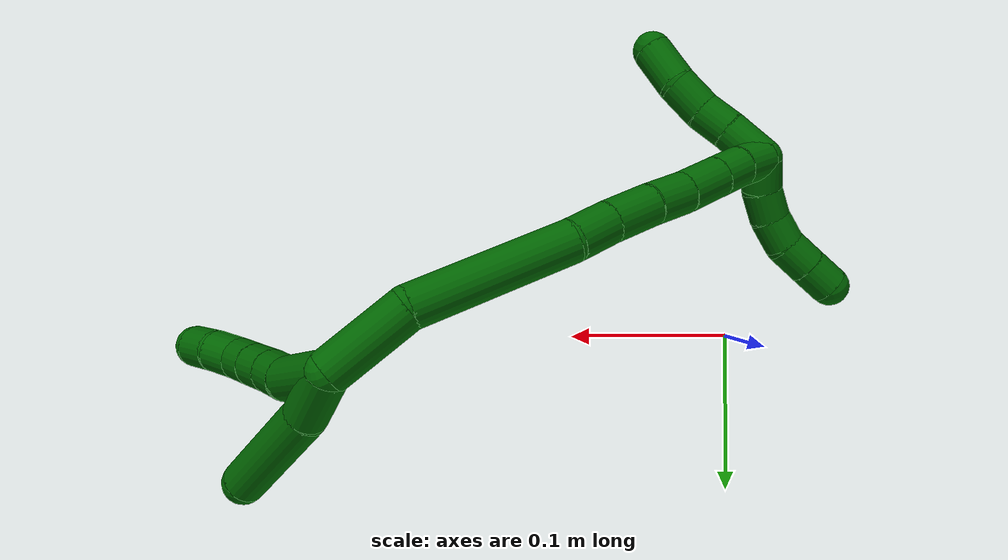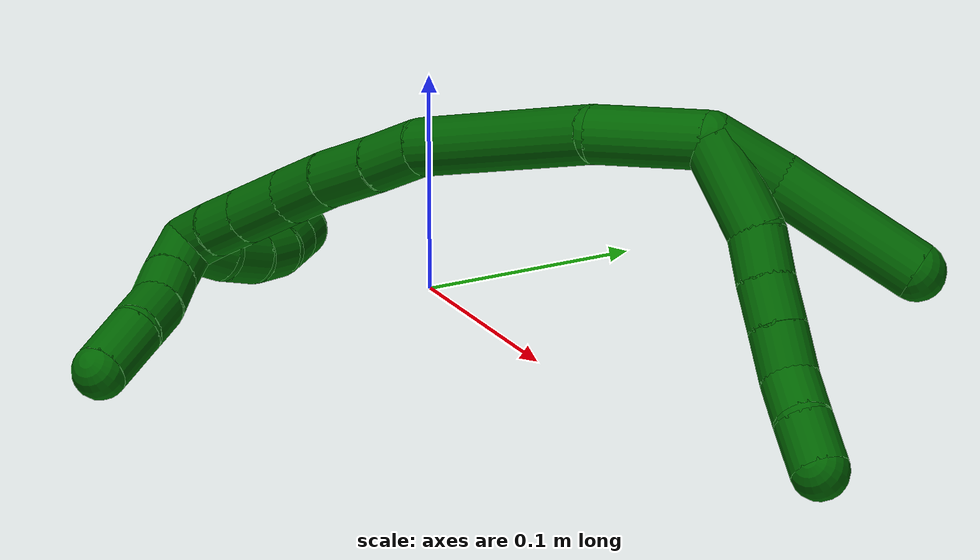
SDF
<sdf version="1.7">
 <world name="default">
  <model name="6">
   <static>0</static>
   <link name="6">
    <collision name="collision-cylinder-e_1_2_8">
     <pose>0.017244 -0.009899 -0.007906 2.24471 0.937164 1.62153</pose>
     <geometry><cylinder><radius>0.0125</radius><length>0.042795</length></cylinder></geometry>
     <surface>
      <friction><ode><mu>1.16</mu><mu2>1.16</mu2><slip1>0</slip1><slip2>0</slip2></ode></friction>
      <contact><ode><kp>1e+06</kp><kd>1</kd><max_vel>0</max_vel><min_depth>0.001</min_depth></ode></contact>
     </surface>
    </collision>
    <visual name="visual-cylinder-e_1_2_8">
     <pose>0.017244 -0.009899 -0.007906 2.24471 0.937164 1.62153</pose>
     <geometry><cylinder><radius>0.0125</radius><length>0.042795</length></cylinder></geometry>
     <material><ambient>0 0.392157 0.003922 1</ambient></material>
    </visual>
    <collision name="collision-cylinder-e_2_8_9">
     <pose>0.041737 -0.026891 -0.018401 1.92078 0.765109 1.04399</pose>
     <geometry><cylinder><radius>0.0125</radius><length>0.020933</length></cylinder></geometry>
     <surface>
      <friction><ode><mu>1.16</mu><mu2>1.16</mu2><slip1>0</slip1><slip2>0</slip2></ode></friction>
      <contact><ode><kp>1e+06</kp><kd>1</kd><max_vel>0</max_vel><min_depth>0.001</min_depth></ode></contact>
     </surface>
    </collision>
    <visual name="visual-cylinder-e_2_8_9">
     <pose>0.041737 -0.026891 -0.018401 1.92078 0.765109 1.04399</pose>
     <geometry><cylinder><radius>0.0125</radius><length>0.020933</length></cylinder></geometry>
     <material><ambient>0 0.392157 0.003922 1</ambient></material>
    </visual>
    <collision name="collision-cylinder-e_3_9_10">
     <pose>0.056793 -0.04068 -0.02321 1.89101 0.835806 1.1029</pose>
     <geometry><cylinder><radius>0.0125</radius><length>0.021046</length></cylinder></geometry>
     <surface>
      <friction><ode><mu>1.16</mu><mu2>1.16</mu2><slip1>0</slip1><slip2>0</slip2></ode></friction>
      <contact><ode><kp>1e+06</kp><kd>1</kd><max_vel>0</max_vel><min_depth>0.001</min_depth></ode></contact>
     </surface>
    </collision>
    <visual name="visual-cylinder-e_3_9_10">
     <pose>0.056793 -0.04068 -0.02321 1.89101 0.835806 1.1029</pose>
     <geometry><cylinder><radius>0.0125</radius><length>0.021046</length></cylinder></geometry>
     <material><ambient>0 0.392157 0.003922 1</ambient></material>
    </visual>
    <collision name="collision-cylinder-e_4_10_11">
     <pose>0.072527 -0.054356 -0.027822 1.9009 0.821453 1.09485</pose>
     <geometry><cylinder><radius>0.0125</radius><length>0.021657</length></cylinder></geometry>
     <surface>
      <friction><ode><mu>1.16</mu><mu2>1.16</mu2><slip1>0</slip1><slip2>0</slip2></ode></friction>
      <contact><ode><kp>1e+06</kp><kd>1</kd><max_vel>0</max_vel><min_depth>0.001</min_depth></ode></contact>
     </surface>
    </collision>
    <visual name="visual-cylinder-e_4_10_11">
     <pose>0.072527 -0.054356 -0.027822 1.9009 0.821453 1.09485</pose>
     <geometry><cylinder><radius>0.0125</radius><length>0.021657</length></cylinder></geometry>
     <material><ambient>0 0.392157 0.003922 1</ambient></material>
    </visual>
    <collision name="collision-cylinder-e_5_11_12">
     <pose>0.089185 -0.066874 -0.029451 1.43416 1.00103 0.890014</pose>
     <geometry><cylinder><radius>0.0125</radius><length>0.020736</length></cylinder></geometry>
     <surface>
      <friction><ode><mu>1.16</mu><mu2>1.16</mu2><slip1>0</slip1><slip2>0</slip2></ode></friction>
      <contact><ode><kp>1e+06</kp><kd>1</kd><max_vel>0</max_vel><min_depth>0.001</min_depth></ode></contact>
     </surface>
    </collision>
    <visual name="visual-cylinder-e_5_11_12">
     <pose>0.089185 -0.066874 -0.029451 1.43416 1.00103 0.890014</pose>
     <geometry><cylinder><radius>0.0125</radius><length>0.020736</length></cylinder></geometry>
     <material><ambient>0 0.392157 0.003922 1</ambient></material>
    </visual>
    <collision name="collision-cylinder-e_6_12_6">
     <pose>0.107198 -0.07886 -0.030308 1.81678 0.949535 1.16531</pose>
     <geometry><cylinder><radius>0.0125</radius><length>0.022833</length></cylinder></geometry>
     <surface>
      <friction><ode><mu>1.16</mu><mu2>1.16</mu2><slip1>0</slip1><slip2>0</slip2></ode></friction>
      <contact><ode><kp>1e+06</kp><kd>1</kd><max_vel>0</max_vel><min_depth>0.001</min_depth></ode></contact>
     </surface>
    </collision>
    <visual name="visual-cylinder-e_6_12_6">
     <pose>0.107198 -0.07886 -0.030308 1.81678 0.949535 1.16531</pose>
     <geometry><cylinder><radius>0.0125</radius><length>0.022833</length></cylinder></geometry>
     <material><ambient>0 0.392157 0.003922 1</ambient></material>
    </visual>
    <collision name="collision-cylinder-e_1_2_13">
     <pose>0.011889 0.00198 -0.010966 -2.96297 0.81773 -2.73397</pose>
     <geometry><cylinder><radius>0.0125</radius><length>0.03259</length></cylinder></geometry>
     <surface>
      <friction><ode><mu>1.16</mu><mu2>1.16</mu2><slip1>0</slip1><slip2>0</slip2></ode></friction>
      <contact><ode><kp>1e+06</kp><kd>1</kd><max_vel>0</max_vel><min_depth>0.001</min_depth></ode></contact>
     </surface>
    </collision>
    <visual name="visual-cylinder-e_1_2_13">
     <pose>0.011889 0.00198 -0.010966 -2.96297 0.81773 -2.73397</pose>
     <geometry><cylinder><radius>0.0125</radius><length>0.03259</length></cylinder></geometry>
     <material><ambient>0 0.392157 0.003922 1</ambient></material>
    </visual>
    <collision name="collision-cylinder-e_2_13_5">
     <pose>0.052503 0.005726 -0.039476 -3.04126 1.02027 -2.96261</pose>
     <geometry><cylinder><radius>0.0125</radius><length>0.06741</length></cylinder></geometry>
     <surface>
      <friction><ode><mu>1.16</mu><mu2>1.16</mu2><slip1>0</slip1><slip2>0</slip2></ode></friction>
      <contact><ode><kp>1e+06</kp><kd>1</kd><max_vel>0</max_vel><min_depth>0.001</min_depth></ode></contact>
     </surface>
    </collision>
    <visual name="visual-cylinder-e_2_13_5">
     <pose>0.052503 0.005726 -0.039476 -3.04126 1.02027 -2.96261</pose>
     <geometry><cylinder><radius>0.0125</radius><length>0.06741</length></cylinder></geometry>
     <material><ambient>0 0.392157 0.003922 1</ambient></material>
    </visual>
    <collision name="collision-cylinder-e_1_2_14">
     <pose>-0.022977 -0.012223 0.00214 1.39751 -1.07561 -0.929072</pose>
     <geometry><cylinder><radius>0.0125</radius><length>0.052227</length></cylinder></geometry>
     <surface>
      <friction><ode><mu>1.16</mu><mu2>1.16</mu2><slip1>0</slip1><slip2>0</slip2></ode></friction>
      <contact><ode><kp>1e+06</kp><kd>1</kd><max_vel>0</max_vel><min_depth>0.001</min_depth></ode></contact>
     </surface>
    </collision>
    <visual name="visual-cylinder-e_1_2_14">
     <pose>-0.022977 -0.012223 0.00214 1.39751 -1.07561 -0.929072</pose>
     <geometry><cylinder><radius>0.0125</radius><length>0.052227</length></cylinder></geometry>
     <material><ambient>0 0.392157 0.003922 1</ambient></material>
    </visual>
    <collision name="collision-cylinder-e_2_14_15">
     <pose>-0.088005 -0.044537 -0.008017 2.12002 -1.0602 -1.61555</pose>
     <geometry><cylinder><radius>0.0125</radius><length>0.0964</length></cylinder></geometry>
     <surface>
      <friction><ode><mu>1.16</mu><mu2>1.16</mu2><slip1>0</slip1><slip2>0</slip2></ode></friction>
      <contact><ode><kp>1e+06</kp><kd>1</kd><max_vel>0</max_vel><min_depth>0.001</min_depth></ode></contact>
     </surface>
    </collision>
    <visual name="visual-cylinder-e_2_14_15">
     <pose>-0.088005 -0.044537 -0.008017 2.12002 -1.0602 -1.61555</pose>
     <geometry><cylinder><radius>0.0125</radius><length>0.0964</length></cylinder></geometry>
     <material><ambient>0 0.392157 0.003922 1</ambient></material>
    </visual>
    <collision name="collision-cylinder-e_3_15_16">
     <pose>-0.139788 -0.072167 -0.024521 2.07986 -0.845014 -1.30707</pose>
     <geometry><cylinder><radius>0.0125</radius><length>0.026017</length></cylinder></geometry>
     <surface>
      <friction><ode><mu>1.16</mu><mu2>1.16</mu2><slip1>0</slip1><slip2>0</slip2></ode></friction>
      <contact><ode><kp>1e+06</kp><kd>1</kd><max_vel>0</max_vel><min_depth>0.001</min_depth></ode></contact>
     </surface>
    </collision>
    <visual name="visual-cylinder-e_3_15_16">
     <pose>-0.139788 -0.072167 -0.024521 2.07986 -0.845014 -1.30707</pose>
     <geometry><cylinder><radius>0.0125</radius><length>0.026017</length></cylinder></geometry>
     <material><ambient>0 0.392157 0.003922 1</ambient></material>
    </visual>
    <collision name="collision-cylinder-e_4_16_17">
     <pose>-0.161216 -0.087677 -0.03393 2.14894 -0.887874 -1.44132</pose>
     <geometry><cylinder><radius>0.0125</radius><length>0.030161</length></cylinder></geometry>
     <surface>
      <friction><ode><mu>1.16</mu><mu2>1.16</mu2><slip1>0</slip1><slip2>0</slip2></ode></friction>
      <contact><ode><kp>1e+06</kp><kd>1</kd><max_vel>0</max_vel><min_depth>0.001</min_depth></ode></contact>
     </surface>
    </collision>
    <visual name="visual-cylinder-e_4_16_17">
     <pose>-0.161216 -0.087677 -0.03393 2.14894 -0.887874 -1.44132</pose>
     <geometry><cylinder><radius>0.0125</radius><length>0.030161</length></cylinder></geometry>
     <material><ambient>0 0.392157 0.003922 1</ambient></material>
    </visual>
    <collision name="collision-cylinder-e_5_17_18">
     <pose>-0.182235 -0.10247 -0.0444 2.22843 -0.824337 -1.45462</pose>
     <geometry><cylinder><radius>0.0125</radius><length>0.025394</length></cylinder></geometry>
     <surface>
      <friction><ode><mu>1.16</mu><mu2>1.16</mu2><slip1>0</slip1><slip2>0</slip2></ode></friction>
      <contact><ode><kp>1e+06</kp><kd>1</kd><max_vel>0</max_vel><min_depth>0.001</min_depth></ode></contact>
     </surface>
    </collision>
    <visual name="visual-cylinder-e_5_17_18">
     <pose>-0.182235 -0.10247 -0.0444 2.22843 -0.824337 -1.45462</pose>
     <geometry><cylinder><radius>0.0125</radius><length>0.025394</length></cylinder></geometry>
     <material><ambient>0 0.392157 0.003922 1</ambient></material>
    </visual>
    <collision name="collision-cylinder-e_6_18_19">
     <pose>-0.201876 -0.117691 -0.054915 2.12911 -0.806138 -1.31122</pose>
     <geometry><cylinder><radius>0.0125</radius><length>0.028604</length></cylinder></geometry>
     <surface>
      <friction><ode><mu>1.16</mu><mu2>1.16</mu2><slip1>0</slip1><slip2>0</slip2></ode></friction>
      <contact><ode><kp>1e+06</kp><kd>1</kd><max_vel>0</max_vel><min_depth>0.001</min_depth></ode></contact>
     </surface>
    </collision>
    <visual name="visual-cylinder-e_6_18_19">
     <pose>-0.201876 -0.117691 -0.054915 2.12911 -0.806138 -1.31122</pose>
     <geometry><cylinder><radius>0.0125</radius><length>0.028604</length></cylinder></geometry>
     <material><ambient>0 0.392157 0.003922 1</ambient></material>
    </visual>
    <collision name="collision-cylinder-e_7_19_20">
     <pose>-0.219604 -0.132082 -0.063908 2.12961 -0.808849 -1.31543</pose>
     <geometry><cylinder><radius>0.0125</radius><length>0.020476</length></cylinder></geometry>
     <surface>
      <friction><ode><mu>1.16</mu><mu2>1.16</mu2><slip1>0</slip1><slip2>0</slip2></ode></friction>
      <contact><ode><kp>1e+06</kp><kd>1</kd><max_vel>0</max_vel><min_depth>0.001</min_depth></ode></contact>
     </surface>
    </collision>
    <visual name="visual-cylinder-e_7_19_20">
     <pose>-0.219604 -0.132082 -0.063908 2.12961 -0.808849 -1.31543</pose>
     <geometry><cylinder><radius>0.0125</radius><length>0.020476</length></cylinder></geometry>
     <material><ambient>0 0.392157 0.003922 1</ambient></material>
    </visual>
    <collision name="collision-cylinder-e_8_20_1">
     <pose>-0.2343 -0.143835 -0.072241 2.24309 -0.780321 -1.41243</pose>
     <geometry><cylinder><radius>0.0125</radius><length>0.020722</length></cylinder></geometry>
     <surface>
      <friction><ode><mu>1.16</mu><mu2>1.16</mu2><slip1>0</slip1><slip2>0</slip2></ode></friction>
      <contact><ode><kp>1e+06</kp><kd>1</kd><max_vel>0</max_vel><min_depth>0.001</min_depth></ode></contact>
     </surface>
    </collision>
    <visual name="visual-cylinder-e_8_20_1">
     <pose>-0.2343 -0.143835 -0.072241 2.24309 -0.780321 -1.41243</pose>
     <geometry><cylinder><radius>0.0125</radius><length>0.020722</length></cylinder></geometry>
     <material><ambient>0 0.392157 0.003922 1</ambient></material>
    </visual>
    <collision name="collision-cylinder-e_1_1_21">
     <pose>-0.239063 -0.146335 -0.085936 -2.79778 0.255442 -1.27369</pose>
     <geometry><cylinder><radius>0.0125</radius><length>0.02</length></cylinder></geometry>
     <surface>
      <friction><ode><mu>1.16</mu><mu2>1.16</mu2><slip1>0</slip1><slip2>0</slip2></ode></friction>
      <contact><ode><kp>1e+06</kp><kd>1</kd><max_vel>0</max_vel><min_depth>0.001</min_depth></ode></contact>
     </surface>
    </collision>
    <visual name="visual-cylinder-e_1_1_21">
     <pose>-0.239063 -0.146335 -0.085936 -2.79778 0.255442 -1.27369</pose>
     <geometry><cylinder><radius>0.0125</radius><length>0.02</length></cylinder></geometry>
     <material><ambient>0 0.392157 0.003922 1</ambient></material>
    </visual>
    <collision name="collision-cylinder-e_2_21_22">
     <pose>-0.236569 -0.13917 -0.104252 -2.74059 -0.003347 0.016467</pose>
     <geometry><cylinder><radius>0.0125</radius><length>0.02</length></cylinder></geometry>
     <surface>
      <friction><ode><mu>1.16</mu><mu2>1.16</mu2><slip1>0</slip1><slip2>0</slip2></ode></friction>
      <contact><ode><kp>1e+06</kp><kd>1</kd><max_vel>0</max_vel><min_depth>0.001</min_depth></ode></contact>
     </surface>
    </collision>
    <visual name="visual-cylinder-e_2_21_22">
     <pose>-0.236569 -0.13917 -0.104252 -2.74059 -0.003347 0.016467</pose>
     <geometry><cylinder><radius>0.0125</radius><length>0.02</length></cylinder></geometry>
     <material><ambient>0 0.392157 0.003922 1</ambient></material>
    </visual>
    <collision name="collision-cylinder-e_3_22_23">
     <pose>-0.238663 -0.130337 -0.121912 -2.61369 -0.207503 0.73551</pose>
     <geometry><cylinder><radius>0.0125</radius><length>0.02</length></cylinder></geometry>
     <surface>
      <friction><ode><mu>1.16</mu><mu2>1.16</mu2><slip1>0</slip1><slip2>0</slip2></ode></friction>
      <contact><ode><kp>1e+06</kp><kd>1</kd><max_vel>0</max_vel><min_depth>0.001</min_depth></ode></contact>
     </surface>
    </collision>
    <visual name="visual-cylinder-e_3_22_23">
     <pose>-0.238663 -0.130337 -0.121912 -2.61369 -0.207503 0.73551</pose>
     <geometry><cylinder><radius>0.0125</radius><length>0.02</length></cylinder></geometry>
     <material><ambient>0 0.392157 0.003922 1</ambient></material>
    </visual>
    <collision name="collision-cylinder-e_4_23_24">
     <pose>-0.245597 -0.121341 -0.138092 -2.65702 -0.509039 1.62212</pose>
     <geometry><cylinder><radius>0.0125</radius><length>0.02</length></cylinder></geometry>
     <surface>
      <friction><ode><mu>1.16</mu><mu2>1.16</mu2><slip1>0</slip1><slip2>0</slip2></ode></friction>
      <contact><ode><kp>1e+06</kp><kd>1</kd><max_vel>0</max_vel><min_depth>0.001</min_depth></ode></contact>
     </surface>
    </collision>
    <visual name="visual-cylinder-e_4_23_24">
     <pose>-0.245597 -0.121341 -0.138092 -2.65702 -0.509039 1.62212</pose>
     <geometry><cylinder><radius>0.0125</radius><length>0.02</length></cylinder></geometry>
     <material><ambient>0 0.392157 0.003922 1</ambient></material>
    </visual>
    <collision name="collision-cylinder-e_5_24_4">
     <pose>-0.255408 -0.113359 -0.153584 -2.67469 -0.516457 1.67565</pose>
     <geometry><cylinder><radius>0.0125</radius><length>0.02</length></cylinder></geometry>
     <surface>
      <friction><ode><mu>1.16</mu><mu2>1.16</mu2><slip1>0</slip1><slip2>0</slip2></ode></friction>
      <contact><ode><kp>1e+06</kp><kd>1</kd><max_vel>0</max_vel><min_depth>0.001</min_depth></ode></contact>
     </surface>
    </collision>
    <visual name="visual-cylinder-e_5_24_4">
     <pose>-0.255408 -0.113359 -0.153584 -2.67469 -0.516457 1.67565</pose>
     <geometry><cylinder><radius>0.0125</radius><length>0.02</length></cylinder></geometry>
     <material><ambient>0 0.392157 0.003922 1</ambient></material>
    </visual>
    <collision name="collision-cylinder-e_1_1_25">
     <pose>-0.234629 -0.158749 -0.069799 0.915961 0.542771 0.272618</pose>
     <geometry><cylinder><radius>0.0125</radius><length>0.026952</length></cylinder></geometry>
     <surface>
      <friction><ode><mu>1.16</mu><mu2>1.16</mu2><slip1>0</slip1><slip2>0</slip2></ode></friction>
      <contact><ode><kp>1e+06</kp><kd>1</kd><max_vel>0</max_vel><min_depth>0.001</min_depth></ode></contact>
     </surface>
    </collision>
    <visual name="visual-cylinder-e_1_1_25">
     <pose>-0.234629 -0.158749 -0.069799 0.915961 0.542771 0.272618</pose>
     <geometry><cylinder><radius>0.0125</radius><length>0.026952</length></cylinder></geometry>
     <material><ambient>0 0.392157 0.003922 1</ambient></material>
    </visual>
    <collision name="collision-cylinder-e_2_25_26">
     <pose>-0.221711 -0.17471 -0.057483 0.910431 0.604645 0.302996</pose>
     <geometry><cylinder><radius>0.0125</radius><length>0.020958</length></cylinder></geometry>
     <surface>
      <friction><ode><mu>1.16</mu><mu2>1.16</mu2><slip1>0</slip1><slip2>0</slip2></ode></friction>
      <contact><ode><kp>1e+06</kp><kd>1</kd><max_vel>0</max_vel><min_depth>0.001</min_depth></ode></contact>
     </surface>
    </collision>
    <visual name="visual-cylinder-e_2_25_26">
     <pose>-0.221711 -0.17471 -0.057483 0.910431 0.604645 0.302996</pose>
     <geometry><cylinder><radius>0.0125</radius><length>0.020958</length></cylinder></geometry>
     <material><ambient>0 0.392157 0.003922 1</ambient></material>
    </visual>
    <collision name="collision-cylinder-e_3_26_27">
     <pose>-0.21066 -0.188905 -0.044775 0.783181 0.45285 0.18968</pose>
     <geometry><cylinder><radius>0.0125</radius><length>0.023288</length></cylinder></geometry>
     <surface>
      <friction><ode><mu>1.16</mu><mu2>1.16</mu2><slip1>0</slip1><slip2>0</slip2></ode></friction>
      <contact><ode><kp>1e+06</kp><kd>1</kd><max_vel>0</max_vel><min_depth>0.001</min_depth></ode></contact>
     </surface>
    </collision>
    <visual name="visual-cylinder-e_3_26_27">
     <pose>-0.21066 -0.188905 -0.044775 0.783181 0.45285 0.18968</pose>
     <geometry><cylinder><radius>0.0125</radius><length>0.023288</length></cylinder></geometry>
     <material><ambient>0 0.392157 0.003922 1</ambient></material>
    </visual>
    <collision name="collision-cylinder-e_4_27_3">
     <pose>-0.201104 -0.208043 -0.030325 1.03169 0.31499 0.179625</pose>
     <geometry><cylinder><radius>0.0125</radius><length>0.028802</length></cylinder></geometry>
     <surface>
      <friction><ode><mu>1.16</mu><mu2>1.16</mu2><slip1>0</slip1><slip2>0</slip2></ode></friction>
      <contact><ode><kp>1e+06</kp><kd>1</kd><max_vel>0</max_vel><min_depth>0.001</min_depth></ode></contact>
     </surface>
    </collision>
    <visual name="visual-cylinder-e_4_27_3">
     <pose>-0.201104 -0.208043 -0.030325 1.03169 0.31499 0.179625</pose>
     <geometry><cylinder><radius>0.0125</radius><length>0.028802</length></cylinder></geometry>
     <material><ambient>0 0.392157 0.003922 1</ambient></material>
    </visual>
    <collision name="collision-sphere-3">
     <pose>-0.196642 -0.219794 -0.023296 0 -0 0</pose>
     <geometry><sphere><radius>0.0125</radius></sphere></geometry>
     <surface>
      <friction><ode><mu>1.16</mu><mu2>1.16</mu2><slip1>0</slip1><slip2>0</slip2></ode></friction>
      <contact><ode><kp>1e+06</kp><kd>1</kd><max_vel>0</max_vel><min_depth>0.001</min_depth></ode></contact>
     </surface>
    </collision>
    <visual name="visual-sphere-3">
     <pose>-0.196642 -0.219794 -0.023296 0 -0 0</pose>
     <geometry><sphere><radius>0.0125</radius></sphere></geometry>
     <material><ambient>0 0.392157 0.003922 1</ambient></material>
    </visual>
    <collision name="collision-sphere-27">
     <pose>-0.205565 -0.196293 -0.037355 0 -0 0</pose>
     <geometry><sphere><radius>0.0125</radius></sphere></geometry>
     <surface>
      <friction><ode><mu>1.16</mu><mu2>1.16</mu2><slip1>0</slip1><slip2>0</slip2></ode></friction>
      <contact><ode><kp>1e+06</kp><kd>1</kd><max_vel>0</max_vel><min_depth>0.001</min_depth></ode></contact>
     </surface>
    </collision>
    <visual name="visual-sphere-27">
     <pose>-0.205565 -0.196293 -0.037355 0 -0 0</pose>
     <geometry><sphere><radius>0.0125</radius></sphere></geometry>
     <material><ambient>0 0.392157 0.003922 1</ambient></material>
    </visual>
    <collision name="collision-sphere-26">
     <pose>-0.215754 -0.181518 -0.052195 0 -0 0</pose>
     <geometry><sphere><radius>0.0125</radius></sphere></geometry>
     <surface>
      <friction><ode><mu>1.16</mu><mu2>1.16</mu2><slip1>0</slip1><slip2>0</slip2></ode></friction>
      <contact><ode><kp>1e+06</kp><kd>1</kd><max_vel>0</max_vel><min_depth>0.001</min_depth></ode></contact>
     </surface>
    </collision>
    <visual name="visual-sphere-26">
     <pose>-0.215754 -0.181518 -0.052195 0 -0 0</pose>
     <geometry><sphere><radius>0.0125</radius></sphere></geometry>
     <material><ambient>0 0.392157 0.003922 1</ambient></material>
    </visual>
    <collision name="collision-sphere-25">
     <pose>-0.227668 -0.167901 -0.062771 0 -0 0</pose>
     <geometry><sphere><radius>0.0125</radius></sphere></geometry>
     <surface>
      <friction><ode><mu>1.16</mu><mu2>1.16</mu2><slip1>0</slip1><slip2>0</slip2></ode></friction>
      <contact><ode><kp>1e+06</kp><kd>1</kd><max_vel>0</max_vel><min_depth>0.001</min_depth></ode></contact>
     </surface>
    </collision>
    <visual name="visual-sphere-25">
     <pose>-0.227668 -0.167901 -0.062771 0 -0 0</pose>
     <geometry><sphere><radius>0.0125</radius></sphere></geometry>
     <material><ambient>0 0.392157 0.003922 1</ambient></material>
    </visual>
    <collision name="collision-sphere-4">
     <pose>-0.260346 -0.109444 -0.161349 0 -0 0</pose>
     <geometry><sphere><radius>0.0125</radius></sphere></geometry>
     <surface>
      <friction><ode><mu>1.16</mu><mu2>1.16</mu2><slip1>0</slip1><slip2>0</slip2></ode></friction>
      <contact><ode><kp>1e+06</kp><kd>1</kd><max_vel>0</max_vel><min_depth>0.001</min_depth></ode></contact>
     </surface>
    </collision>
    <visual name="visual-sphere-4">
     <pose>-0.260346 -0.109444 -0.161349 0 -0 0</pose>
     <geometry><sphere><radius>0.0125</radius></sphere></geometry>
     <material><ambient>0 0.392157 0.003922 1</ambient></material>
    </visual>
    <collision name="collision-sphere-24">
     <pose>-0.25047 -0.117273 -0.145819 0 -0 0</pose>
     <geometry><sphere><radius>0.0125</radius></sphere></geometry>
     <surface>
      <friction><ode><mu>1.16</mu><mu2>1.16</mu2><slip1>0</slip1><slip2>0</slip2></ode></friction>
      <contact><ode><kp>1e+06</kp><kd>1</kd><max_vel>0</max_vel><min_depth>0.001</min_depth></ode></contact>
     </surface>
    </collision>
    <visual name="visual-sphere-24">
     <pose>-0.25047 -0.117273 -0.145819 0 -0 0</pose>
     <geometry><sphere><radius>0.0125</radius></sphere></geometry>
     <material><ambient>0 0.392157 0.003922 1</ambient></material>
    </visual>
    <collision name="collision-sphere-23">
     <pose>-0.240723 -0.125408 -0.130365 0 -0 0</pose>
     <geometry><sphere><radius>0.0125</radius></sphere></geometry>
     <surface>
      <friction><ode><mu>1.16</mu><mu2>1.16</mu2><slip1>0</slip1><slip2>0</slip2></ode></friction>
      <contact><ode><kp>1e+06</kp><kd>1</kd><max_vel>0</max_vel><min_depth>0.001</min_depth></ode></contact>
     </surface>
    </collision>
    <visual name="visual-sphere-23">
     <pose>-0.240723 -0.125408 -0.130365 0 -0 0</pose>
     <geometry><sphere><radius>0.0125</radius></sphere></geometry>
     <material><ambient>0 0.392157 0.003922 1</ambient></material>
    </visual>
    <collision name="collision-sphere-22">
     <pose>-0.236603 -0.135267 -0.113458 0 -0 0</pose>
     <geometry><sphere><radius>0.0125</radius></sphere></geometry>
     <surface>
      <friction><ode><mu>1.16</mu><mu2>1.16</mu2><slip1>0</slip1><slip2>0</slip2></ode></friction>
      <contact><ode><kp>1e+06</kp><kd>1</kd><max_vel>0</max_vel><min_depth>0.001</min_depth></ode></contact>
     </surface>
    </collision>
    <visual name="visual-sphere-22">
     <pose>-0.236603 -0.135267 -0.113458 0 -0 0</pose>
     <geometry><sphere><radius>0.0125</radius></sphere></geometry>
     <material><ambient>0 0.392157 0.003922 1</ambient></material>
    </visual>
    <collision name="collision-sphere-21">
     <pose>-0.236536 -0.143073 -0.095045 0 -0 0</pose>
     <geometry><sphere><radius>0.0125</radius></sphere></geometry>
     <surface>
      <friction><ode><mu>1.16</mu><mu2>1.16</mu2><slip1>0</slip1><slip2>0</slip2></ode></friction>
      <contact><ode><kp>1e+06</kp><kd>1</kd><max_vel>0</max_vel><min_depth>0.001</min_depth></ode></contact>
     </surface>
    </collision>
    <visual name="visual-sphere-21">
     <pose>-0.236536 -0.143073 -0.095045 0 -0 0</pose>
     <geometry><sphere><radius>0.0125</radius></sphere></geometry>
     <material><ambient>0 0.392157 0.003922 1</ambient></material>
    </visual>
    <collision name="collision-sphere-1">
     <pose>-0.241589 -0.149596 -0.076827 0 -0 0</pose>
     <geometry><sphere><radius>0.0125</radius></sphere></geometry>
     <surface>
      <friction><ode><mu>1.16</mu><mu2>1.16</mu2><slip1>0</slip1><slip2>0</slip2></ode></friction>
      <contact><ode><kp>1e+06</kp><kd>1</kd><max_vel>0</max_vel><min_depth>0.001</min_depth></ode></contact>
     </surface>
    </collision>
    <visual name="visual-sphere-1">
     <pose>-0.241589 -0.149596 -0.076827 0 -0 0</pose>
     <geometry><sphere><radius>0.0125</radius></sphere></geometry>
     <material><ambient>0 0.392157 0.003922 1</ambient></material>
    </visual>
    <collision name="collision-sphere-12">
     <pose>0.097915 -0.072415 -0.02869 0 -0 0</pose>
     <geometry><sphere><radius>0.0125</radius></sphere></geometry>
     <surface>
      <friction><ode><mu>1.16</mu><mu2>1.16</mu2><slip1>0</slip1><slip2>0</slip2></ode></friction>
      <contact><ode><kp>1e+06</kp><kd>1</kd><max_vel>0</max_vel><min_depth>0.001</min_depth></ode></contact>
     </surface>
    </collision>
    <visual name="visual-sphere-12">
     <pose>0.097915 -0.072415 -0.02869 0 -0 0</pose>
     <geometry><sphere><radius>0.0125</radius></sphere></geometry>
     <material><ambient>0 0.392157 0.003922 1</ambient></material>
    </visual>
    <collision name="collision-sphere-11">
     <pose>0.080455 -0.061333 -0.030213 0 -0 0</pose>
     <geometry><sphere><radius>0.0125</radius></sphere></geometry>
     <surface>
      <friction><ode><mu>1.16</mu><mu2>1.16</mu2><slip1>0</slip1><slip2>0</slip2></ode></friction>
      <contact><ode><kp>1e+06</kp><kd>1</kd><max_vel>0</max_vel><min_depth>0.001</min_depth></ode></contact>
     </surface>
    </collision>
    <visual name="visual-sphere-11">
     <pose>0.080455 -0.061333 -0.030213 0 -0 0</pose>
     <geometry><sphere><radius>0.0125</radius></sphere></geometry>
     <material><ambient>0 0.392157 0.003922 1</ambient></material>
    </visual>
    <collision name="collision-sphere-10">
     <pose>0.064599 -0.047378 -0.025432 0 -0 0</pose>
     <geometry><sphere><radius>0.0125</radius></sphere></geometry>
     <surface>
      <friction><ode><mu>1.16</mu><mu2>1.16</mu2><slip1>0</slip1><slip2>0</slip2></ode></friction>
      <contact><ode><kp>1e+06</kp><kd>1</kd><max_vel>0</max_vel><min_depth>0.001</min_depth></ode></contact>
     </surface>
    </collision>
    <visual name="visual-sphere-10">
     <pose>0.064599 -0.047378 -0.025432 0 -0 0</pose>
     <geometry><sphere><radius>0.0125</radius></sphere></geometry>
     <material><ambient>0 0.392157 0.003922 1</ambient></material>
    </visual>
    <collision name="collision-sphere-9">
     <pose>0.048986 -0.033983 -0.020989 0 -0 0</pose>
     <geometry><sphere><radius>0.0125</radius></sphere></geometry>
     <surface>
      <friction><ode><mu>1.16</mu><mu2>1.16</mu2><slip1>0</slip1><slip2>0</slip2></ode></friction>
      <contact><ode><kp>1e+06</kp><kd>1</kd><max_vel>0</max_vel><min_depth>0.001</min_depth></ode></contact>
     </surface>
    </collision>
    <visual name="visual-sphere-9">
     <pose>0.048986 -0.033983 -0.020989 0 -0 0</pose>
     <geometry><sphere><radius>0.0125</radius></sphere></geometry>
     <material><ambient>0 0.392157 0.003922 1</ambient></material>
    </visual>
    <collision name="collision-sphere-2">
     <geometry><sphere><radius>0.0125</radius></sphere></geometry>
     <surface>
      <friction><ode><mu>1.16</mu><mu2>1.16</mu2><slip1>0</slip1><slip2>0</slip2></ode></friction>
      <contact><ode><kp>1e+06</kp><kd>1</kd><max_vel>0</max_vel><min_depth>0.001</min_depth></ode></contact>
     </surface>
    </collision>
    <visual name="visual-sphere-2">
     <geometry><sphere><radius>0.0125</radius></sphere></geometry>
     <material><ambient>0 0.392157 0.003922 1</ambient></material>
    </visual>
    <collision name="collision-sphere-19">
     <pose>-0.212197 -0.126089 -0.060161 0 -0 0</pose>
     <geometry><sphere><radius>0.0125</radius></sphere></geometry>
     <surface>
      <friction><ode><mu>1.16</mu><mu2>1.16</mu2><slip1>0</slip1><slip2>0</slip2></ode></friction>
      <contact><ode><kp>1e+06</kp><kd>1</kd><max_vel>0</max_vel><min_depth>0.001</min_depth></ode></contact>
     </surface>
    </collision>
    <visual name="visual-sphere-19">
     <pose>-0.212197 -0.126089 -0.060161 0 -0 0</pose>
     <geometry><sphere><radius>0.0125</radius></sphere></geometry>
     <material><ambient>0 0.392157 0.003922 1</ambient></material>
    </visual>
    <collision name="collision-sphere-8">
     <pose>0.034488 -0.019799 -0.015812 0 -0 0</pose>
     <geometry><sphere><radius>0.0125</radius></sphere></geometry>
     <surface>
      <friction><ode><mu>1.16</mu><mu2>1.16</mu2><slip1>0</slip1><slip2>0</slip2></ode></friction>
      <contact><ode><kp>1e+06</kp><kd>1</kd><max_vel>0</max_vel><min_depth>0.001</min_depth></ode></contact>
     </surface>
    </collision>
    <visual name="visual-sphere-8">
     <pose>0.034488 -0.019799 -0.015812 0 -0 0</pose>
     <geometry><sphere><radius>0.0125</radius></sphere></geometry>
     <material><ambient>0 0.392157 0.003922 1</ambient></material>
    </visual>
    <collision name="collision-sphere-6">
     <pose>0.116482 -0.085305 -0.031926 0 -0 0</pose>
     <geometry><sphere><radius>0.0125</radius></sphere></geometry>
     <surface>
      <friction><ode><mu>1.16</mu><mu2>1.16</mu2><slip1>0</slip1><slip2>0</slip2></ode></friction>
      <contact><ode><kp>1e+06</kp><kd>1</kd><max_vel>0</max_vel><min_depth>0.001</min_depth></ode></contact>
     </surface>
    </collision>
    <visual name="visual-sphere-6">
     <pose>0.116482 -0.085305 -0.031926 0 -0 0</pose>
     <geometry><sphere><radius>0.0125</radius></sphere></geometry>
     <material><ambient>0 0.392157 0.003922 1</ambient></material>
    </visual>
    <collision name="collision-sphere-13">
     <pose>0.023777 0.00396 -0.021933 0 -0 0</pose>
     <geometry><sphere><radius>0.0125</radius></sphere></geometry>
     <surface>
      <friction><ode><mu>1.16</mu><mu2>1.16</mu2><slip1>0</slip1><slip2>0</slip2></ode></friction>
      <contact><ode><kp>1e+06</kp><kd>1</kd><max_vel>0</max_vel><min_depth>0.001</min_depth></ode></contact>
     </surface>
    </collision>
    <visual name="visual-sphere-13">
     <pose>0.023777 0.00396 -0.021933 0 -0 0</pose>
     <geometry><sphere><radius>0.0125</radius></sphere></geometry>
     <material><ambient>0 0.392157 0.003922 1</ambient></material>
    </visual>
    <collision name="collision-sphere-5">
     <pose>0.081228 0.007492 -0.05702 0 -0 0</pose>
     <geometry><sphere><radius>0.0125</radius></sphere></geometry>
     <surface>
      <friction><ode><mu>1.16</mu><mu2>1.16</mu2><slip1>0</slip1><slip2>0</slip2></ode></friction>
      <contact><ode><kp>1e+06</kp><kd>1</kd><max_vel>0</max_vel><min_depth>0.001</min_depth></ode></contact>
     </surface>
    </collision>
    <visual name="visual-sphere-5">
     <pose>0.081228 0.007492 -0.05702 0 -0 0</pose>
     <geometry><sphere><radius>0.0125</radius></sphere></geometry>
     <material><ambient>0 0.392157 0.003922 1</ambient></material>
    </visual>
    <collision name="collision-sphere-14">
     <pose>-0.045953 -0.024446 0.004279 0 -0 0</pose>
     <geometry><sphere><radius>0.0125</radius></sphere></geometry>
     <surface>
      <friction><ode><mu>1.16</mu><mu2>1.16</mu2><slip1>0</slip1><slip2>0</slip2></ode></friction>
      <contact><ode><kp>1e+06</kp><kd>1</kd><max_vel>0</max_vel><min_depth>0.001</min_depth></ode></contact>
     </surface>
    </collision>
    <visual name="visual-sphere-14">
     <pose>-0.045953 -0.024446 0.004279 0 -0 0</pose>
     <geometry><sphere><radius>0.0125</radius></sphere></geometry>
     <material><ambient>0 0.392157 0.003922 1</ambient></material>
    </visual>
    <collision name="collision-sphere-15">
     <pose>-0.130058 -0.064628 -0.020313 0 -0 0</pose>
     <geometry><sphere><radius>0.0125</radius></sphere></geometry>
     <surface>
      <friction><ode><mu>1.16</mu><mu2>1.16</mu2><slip1>0</slip1><slip2>0</slip2></ode></friction>
      <contact><ode><kp>1e+06</kp><kd>1</kd><max_vel>0</max_vel><min_depth>0.001</min_depth></ode></contact>
     </surface>
    </collision>
    <visual name="visual-sphere-15">
     <pose>-0.130058 -0.064628 -0.020313 0 -0 0</pose>
     <geometry><sphere><radius>0.0125</radius></sphere></geometry>
     <material><ambient>0 0.392157 0.003922 1</ambient></material>
    </visual>
    <collision name="collision-sphere-16">
     <pose>-0.149518 -0.079707 -0.028729 0 -0 0</pose>
     <geometry><sphere><radius>0.0125</radius></sphere></geometry>
     <surface>
      <friction><ode><mu>1.16</mu><mu2>1.16</mu2><slip1>0</slip1><slip2>0</slip2></ode></friction>
      <contact><ode><kp>1e+06</kp><kd>1</kd><max_vel>0</max_vel><min_depth>0.001</min_depth></ode></contact>
     </surface>
    </collision>
    <visual name="visual-sphere-16">
     <pose>-0.149518 -0.079707 -0.028729 0 -0 0</pose>
     <geometry><sphere><radius>0.0125</radius></sphere></geometry>
     <material><ambient>0 0.392157 0.003922 1</ambient></material>
    </visual>
    <collision name="collision-sphere-17">
     <pose>-0.172914 -0.095646 -0.03913 0 -0 0</pose>
     <geometry><sphere><radius>0.0125</radius></sphere></geometry>
     <surface>
      <friction><ode><mu>1.16</mu><mu2>1.16</mu2><slip1>0</slip1><slip2>0</slip2></ode></friction>
      <contact><ode><kp>1e+06</kp><kd>1</kd><max_vel>0</max_vel><min_depth>0.001</min_depth></ode></contact>
     </surface>
    </collision>
    <visual name="visual-sphere-17">
     <pose>-0.172914 -0.095646 -0.03913 0 -0 0</pose>
     <geometry><sphere><radius>0.0125</radius></sphere></geometry>
     <material><ambient>0 0.392157 0.003922 1</ambient></material>
    </visual>
    <collision name="collision-sphere-18">
     <pose>-0.191556 -0.109294 -0.04967 0 -0 0</pose>
     <geometry><sphere><radius>0.0125</radius></sphere></geometry>
     <surface>
      <friction><ode><mu>1.16</mu><mu2>1.16</mu2><slip1>0</slip1><slip2>0</slip2></ode></friction>
      <contact><ode><kp>1e+06</kp><kd>1</kd><max_vel>0</max_vel><min_depth>0.001</min_depth></ode></contact>
     </surface>
    </collision>
    <visual name="visual-sphere-18">
     <pose>-0.191556 -0.109294 -0.04967 0 -0 0</pose>
     <geometry><sphere><radius>0.0125</radius></sphere></geometry>
     <material><ambient>0 0.392157 0.003922 1</ambient></material>
    </visual>
    <collision name="collision-sphere-20">
     <pose>-0.227011 -0.138074 -0.067655 0 -0 0</pose>
     <geometry><sphere><radius>0.0125</radius></sphere></geometry>
     <surface>
      <friction><ode><mu>1.16</mu><mu2>1.16</mu2><slip1>0</slip1><slip2>0</slip2></ode></friction>
      <contact><ode><kp>1e+06</kp><kd>1</kd><max_vel>0</max_vel><min_depth>0.001</min_depth></ode></contact>
     </surface>
    </collision>
    <visual name="visual-sphere-20">
     <pose>-0.227011 -0.138074 -0.067655 0 -0 0</pose>
     <geometry><sphere><radius>0.0125</radius></sphere></geometry>
     <material><ambient>0 0.392157 0.003922 1</ambient></material>
    </visual>
    <inertial>
     <pose>-0.09508 -0.077608 -0.041386 0 -0 0</pose>
     <mass>0.75</mass>
     <inertia><ixx>-4.5e-05</ixx><ixy>0</ixy><ixz>0</ixz><iyy>6.2e-05</iyy><iyz>0</iyz><izz>9.1e-05</izz></inertia>
    </inertial>
   </link>
   <pose>0.23146 0.009214 0.141704 0.820495 0.218262 0.286234</pose>
  </model>
 </world>
</sdf>
